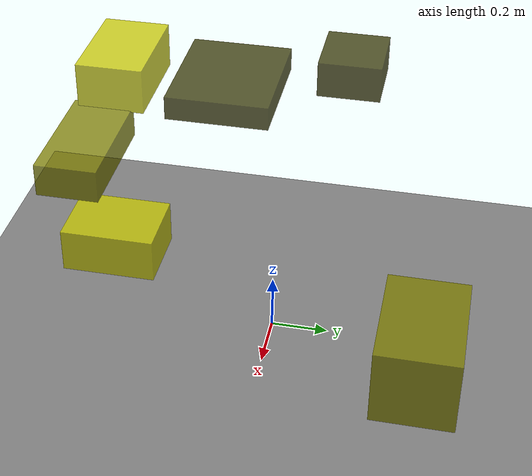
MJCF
<?xml version="1.0"?>
<mujoco model="obstacle_scene">
  <compiler angle="radian" coordinate="local"/>
  <option timestep="0.001" gravity="0 0 -9.81"/>

  <asset>
    <material name="obstacle_mat" rgba="0.8 0.8 0.0 0.8"/>
    <material name="ground_mat" rgba="0.5 0.5 0.5 1"/>
  </asset>

  <worldbody>
    <!-- Ground plane -->
    <geom name="ground" type="plane" size="3 3 0.1" material="ground_mat"/>

    <!-- Obstacles -->
    <body name="obstacle_0" pos="-0.052924 -0.162770 0.947360">
      <geom name="obs_0" type="box" size="0.200905 0.165907 0.038996" rgba="0.2 0.2 0.0 0.8"/>
    </body>
    <body name="obstacle_1" pos="0.611576 0.553401 0.503095">
      <geom name="obs_1" type="box" size="0.184127 0.125328 0.123441" rgba="0.5 0.5 0.0 0.8"/>
    </body>
    <body name="obstacle_2" pos="0.170092 -0.443398 1.099868">
      <geom name="obs_2" type="box" size="0.155067 0.101165 0.070678" rgba="0.8 0.8 0.0 0.8"/>
    </body>
    <body name="obstacle_3" pos="-0.483764 0.188901 0.819159">
      <geom name="obs_3" type="box" size="0.123013 0.110851 0.064446" rgba="0.2 0.2 0.0 0.8"/>
    </body>
    <body name="obstacle_4" pos="0.482825 -0.472436 0.983854">
      <geom name="obs_4" type="box" size="0.185022 0.091171 0.049398" rgba="0.5 0.5 0.0 0.8"/>
    </body>
    <body name="obstacle_5" pos="-0.229677 -0.647077 0.128777">
      <geom name="obs_5" type="box" size="0.132687 0.175472 0.083988" rgba="0.8 0.8 0.0 0.8"/>
    </body>
  </worldbody>
</mujoco>
